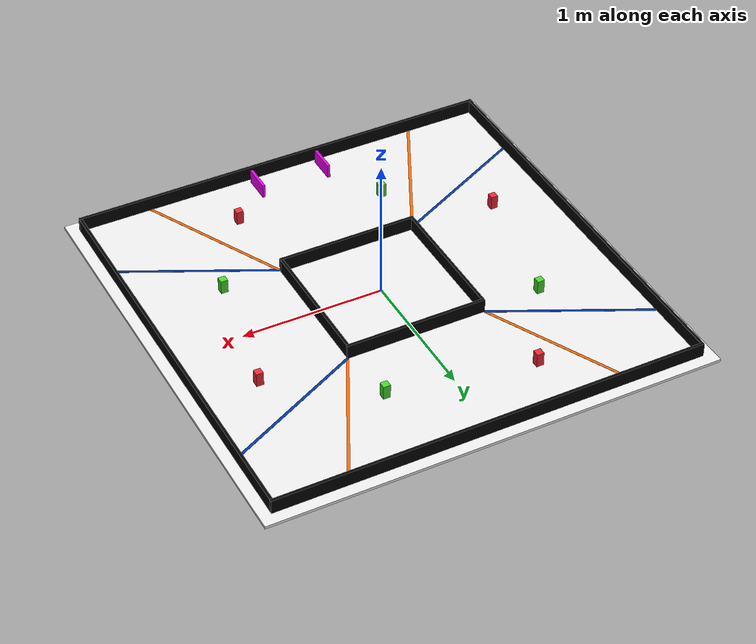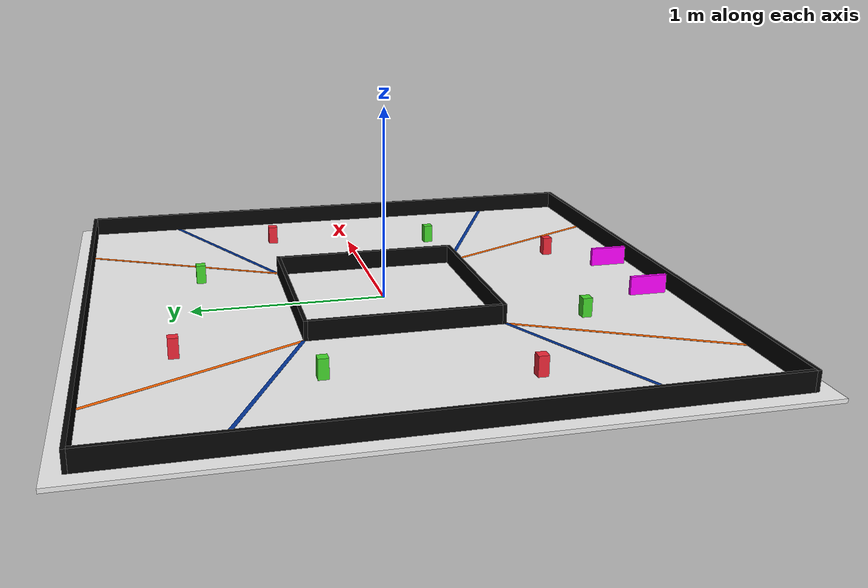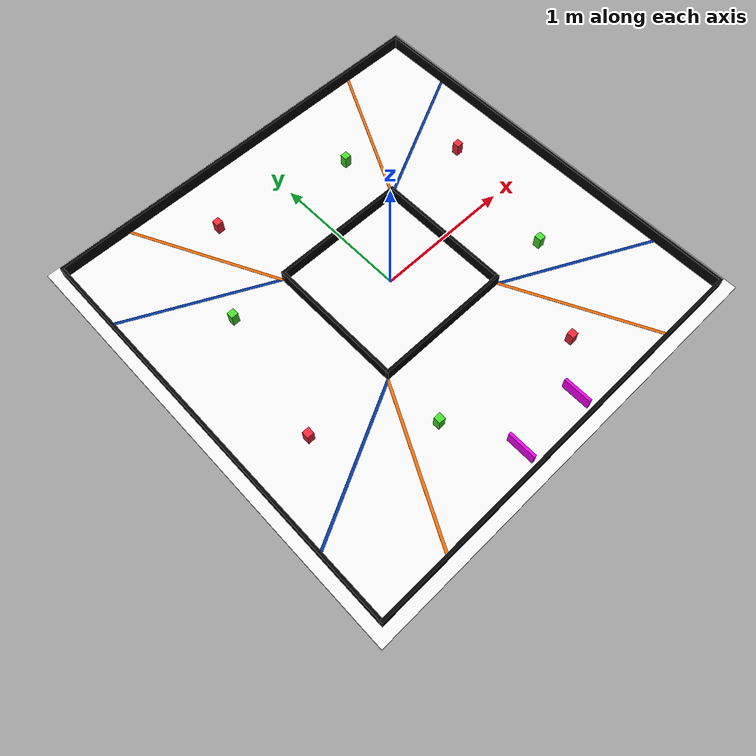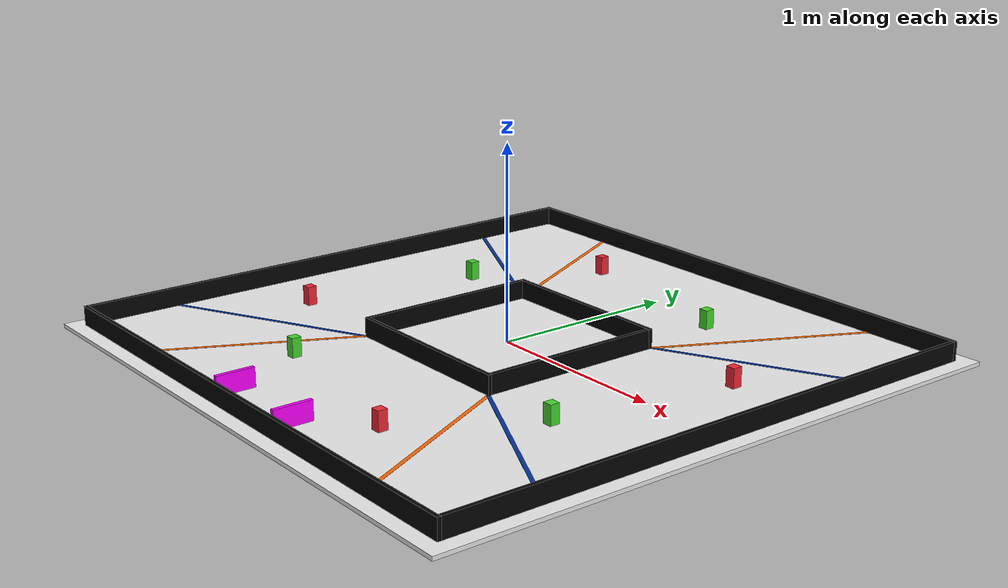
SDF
<sdf version="1.9">
 <world name="wro_future_engineers">
  <model name="wro_field_mat">
   <static>true</static>
   <pose>0 0 -0.01 0 0 0</pose>
   <link name="field_mat_link">
    <collision name="field_mat_collision">
     <geometry><box><size>3.2 3.2 0.02</size></box></geometry>
     <surface>
      <friction>
       <ode><mu>0.80</mu><mu2>0.80</mu2><fdir1>1 0 0</fdir1></ode>
       <torsional>
        <coefficient>0.20</coefficient>
        <use_patch_radius>true</use_patch_radius>
        <patch_radius>0.01</patch_radius>
        <surface_radius>0.01</surface_radius>
       </torsional>
      </friction>
      <contact>
       <collide_bitmask>65535</collide_bitmask>
       <ode><kp>1000000</kp><kd>100</kd><max_vel>0.01</max_vel><min_depth>0.001</min_depth></ode>
      </contact>
     </surface>
    </collision>
    <visual name="field_mat_visual">
     <geometry><box><size>3.2 3.2 0.02</size></box></geometry>
     <material>
      <ambient>0.92 0.92 0.92 1</ambient>
      <diffuse>0.92 0.92 0.92 1</diffuse>
      <specular>0.01 0.01 0.01 1</specular>
      <pbr><metal><roughness>1.0</roughness><metalness>0.0</metalness></metal></pbr>
     </material>
    </visual>
   </link>
  </model>
  <model name="outer_wall_north">
   <static>true</static>
   <pose>0 1.51 0.05 0 0 0</pose>
   <link name="link">
    <collision name="collision">
     <geometry><box><size>3.04 0.02 0.1</size></box></geometry>
     <surface>
      <friction><ode><mu>0.80</mu><mu2>0.80</mu2></ode></friction>
      <contact><ode><kp>1000000</kp><kd>100</kd><max_vel>0.01</max_vel><min_depth>0.001</min_depth></ode></contact>
     </surface>
    </collision>
    <visual name="visual">
     <geometry><box><size>3.04 0.02 0.1</size></box></geometry>
     <material>
      <ambient>0.015 0.015 0.015 1.0</ambient>
      <diffuse>0.015 0.015 0.015 1.0</diffuse>
      <specular>0.02 0.02 0.02 1</specular>
      <pbr><metal><roughness>0.95</roughness><metalness>0.0</metalness></metal></pbr>
     </material>
    </visual>
   </link>
  </model>
  <model name="outer_wall_south">
   <static>true</static>
   <pose>0 -1.51 0.05 0 0 0</pose>
   <link name="link">
    <collision name="collision">
     <geometry><box><size>3.04 0.02 0.1</size></box></geometry>
     <surface>
      <friction><ode><mu>0.80</mu><mu2>0.80</mu2></ode></friction>
      <contact><ode><kp>1000000</kp><kd>100</kd><max_vel>0.01</max_vel><min_depth>0.001</min_depth></ode></contact>
     </surface>
    </collision>
    <visual name="visual">
     <geometry><box><size>3.04 0.02 0.1</size></box></geometry>
     <material>
      <ambient>0.015 0.015 0.015 1.0</ambient>
      <diffuse>0.015 0.015 0.015 1.0</diffuse>
      <specular>0.02 0.02 0.02 1</specular>
      <pbr><metal><roughness>0.95</roughness><metalness>0.0</metalness></metal></pbr>
     </material>
    </visual>
   </link>
  </model>
  <model name="outer_wall_east">
   <static>true</static>
   <pose>1.51 0 0.05 0 0 0</pose>
   <link name="link">
    <collision name="collision">
     <geometry><box><size>0.02 3.0 0.1</size></box></geometry>
     <surface>
      <friction><ode><mu>0.80</mu><mu2>0.80</mu2></ode></friction>
      <contact><ode><kp>1000000</kp><kd>100</kd><max_vel>0.01</max_vel><min_depth>0.001</min_depth></ode></contact>
     </surface>
    </collision>
    <visual name="visual">
     <geometry><box><size>0.02 3.0 0.1</size></box></geometry>
     <material>
      <ambient>0.015 0.015 0.015 1.0</ambient>
      <diffuse>0.015 0.015 0.015 1.0</diffuse>
      <specular>0.02 0.02 0.02 1</specular>
      <pbr><metal><roughness>0.95</roughness><metalness>0.0</metalness></metal></pbr>
     </material>
    </visual>
   </link>
  </model>
  <model name="outer_wall_west">
   <static>true</static>
   <pose>-1.51 0 0.05 0 0 0</pose>
   <link name="link">
    <collision name="collision">
     <geometry><box><size>0.02 3.0 0.1</size></box></geometry>
     <surface>
      <friction><ode><mu>0.80</mu><mu2>0.80</mu2></ode></friction>
      <contact><ode><kp>1000000</kp><kd>100</kd><max_vel>0.01</max_vel><min_depth>0.001</min_depth></ode></contact>
     </surface>
    </collision>
    <visual name="visual">
     <geometry><box><size>0.02 3.0 0.1</size></box></geometry>
     <material>
      <ambient>0.015 0.015 0.015 1.0</ambient>
      <diffuse>0.015 0.015 0.015 1.0</diffuse>
      <specular>0.02 0.02 0.02 1</specular>
      <pbr><metal><roughness>0.95</roughness><metalness>0.0</metalness></metal></pbr>
     </material>
    </visual>
   </link>
  </model>
  <model name="inner_wall_north">
   <static>true</static>
   <pose>0 0.49 0.05 0 0 0</pose>
   <link name="link">
    <collision name="collision">
     <geometry><box><size>1.0 0.02 0.1</size></box></geometry>
     <surface>
      <friction><ode><mu>0.80</mu><mu2>0.80</mu2></ode></friction>
      <contact><ode><kp>1000000</kp><kd>100</kd><max_vel>0.01</max_vel><min_depth>0.001</min_depth></ode></contact>
     </surface>
    </collision>
    <visual name="visual">
     <geometry><box><size>1.0 0.02 0.1</size></box></geometry>
     <material>
      <ambient>0.01 0.01 0.01 1.0</ambient>
      <diffuse>0.01 0.01 0.01 1.0</diffuse>
      <specular>0.02 0.02 0.02 1</specular>
      <pbr><metal><roughness>0.95</roughness><metalness>0.0</metalness></metal></pbr>
     </material>
    </visual>
   </link>
  </model>
  <model name="inner_wall_south">
   <static>true</static>
   <pose>0 -0.49 0.05 0 0 0</pose>
   <link name="link">
    <collision name="collision">
     <geometry><box><size>1.0 0.02 0.1</size></box></geometry>
     <surface>
      <friction><ode><mu>0.80</mu><mu2>0.80</mu2></ode></friction>
      <contact><ode><kp>1000000</kp><kd>100</kd><max_vel>0.01</max_vel><min_depth>0.001</min_depth></ode></contact>
     </surface>
    </collision>
    <visual name="visual">
     <geometry><box><size>1.0 0.02 0.1</size></box></geometry>
     <material>
      <ambient>0.01 0.01 0.01 1.0</ambient>
      <diffuse>0.01 0.01 0.01 1.0</diffuse>
      <specular>0.02 0.02 0.02 1</specular>
      <pbr><metal><roughness>0.95</roughness><metalness>0.0</metalness></metal></pbr>
     </material>
    </visual>
   </link>
  </model>
  <model name="inner_wall_east">
   <static>true</static>
   <pose>0.49 0 0.05 0 0 0</pose>
   <link name="link">
    <collision name="collision">
     <geometry><box><size>0.02 0.96 0.1</size></box></geometry>
     <surface>
      <friction><ode><mu>0.80</mu><mu2>0.80</mu2></ode></friction>
      <contact><ode><kp>1000000</kp><kd>100</kd><max_vel>0.01</max_vel><min_depth>0.001</min_depth></ode></contact>
     </surface>
    </collision>
    <visual name="visual">
     <geometry><box><size>0.02 0.96 0.1</size></box></geometry>
     <material>
      <ambient>0.01 0.01 0.01 1.0</ambient>
      <diffuse>0.01 0.01 0.01 1.0</diffuse>
      <specular>0.02 0.02 0.02 1</specular>
      <pbr><metal><roughness>0.95</roughness><metalness>0.0</metalness></metal></pbr>
     </material>
    </visual>
   </link>
  </model>
  <model name="inner_wall_west">
   <static>true</static>
   <pose>-0.49 0 0.05 0 0 0</pose>
   <link name="link">
    <collision name="collision">
     <geometry><box><size>0.02 0.96 0.1</size></box></geometry>
     <surface>
      <friction><ode><mu>0.80</mu><mu2>0.80</mu2></ode></friction>
      <contact><ode><kp>1000000</kp><kd>100</kd><max_vel>0.01</max_vel><min_depth>0.001</min_depth></ode></contact>
     </surface>
    </collision>
    <visual name="visual">
     <geometry><box><size>0.02 0.96 0.1</size></box></geometry>
     <material>
      <ambient>0.01 0.01 0.01 1.0</ambient>
      <diffuse>0.01 0.01 0.01 1.0</diffuse>
      <specular>0.02 0.02 0.02 1</specular>
      <pbr><metal><roughness>0.95</roughness><metalness>0.0</metalness></metal></pbr>
     </material>
    </visual>
   </link>
  </model>
  <model name="orange_line_sw">
   <static>true</static>
   <pose>-0.75 -1.0 0.0015 0 0 -2.0344439357957027</pose>
   <link name="link">
    <visual name="visual">
     <geometry><box><size>1.118 0.02 0.001</size></box></geometry>
     <material>
      <ambient>1.0 0.4 0.0 1</ambient>
      <diffuse>1.0 0.4 0.0 1</diffuse>
      <specular>0 0 0 1</specular>
     </material>
    </visual>
   </link>
  </model>
  <model name="blue_line_sw">
   <static>true</static>
   <pose>-1.0 -0.75 0.0015 0 0 -2.677945044588987</pose>
   <link name="link">
    <visual name="visual">
     <geometry><box><size>1.118 0.02 0.001</size></box></geometry>
     <material>
      <ambient>0.0 0.2 0.6 1</ambient>
      <diffuse>0.0 0.2 0.6 1</diffuse>
      <specular>0 0 0 1</specular>
     </material>
    </visual>
   </link>
  </model>
  <model name="orange_line_se">
   <static>true</static>
   <pose>0.75 -1.0 0.0015 0 0 -1.1071487177940904</pose>
   <link name="link">
    <visual name="visual">
     <geometry><box><size>1.118 0.02 0.001</size></box></geometry>
     <material>
      <ambient>1.0 0.4 0.0 1</ambient>
      <diffuse>1.0 0.4 0.0 1</diffuse>
      <specular>0 0 0 1</specular>
     </material>
    </visual>
   </link>
  </model>
  <model name="blue_line_se">
   <static>true</static>
   <pose>1.0 -0.75 0.0015 0 0 -0.4636476090008061</pose>
   <link name="link">
    <visual name="visual">
     <geometry><box><size>1.118 0.02 0.001</size></box></geometry>
     <material>
      <ambient>0.0 0.2 0.6 1</ambient>
      <diffuse>0.0 0.2 0.6 1</diffuse>
      <specular>0 0 0 1</specular>
     </material>
    </visual>
   </link>
  </model>
  <model name="orange_line_ne">
   <static>true</static>
   <pose>0.75 1.0 0.0015 0 0 1.1071487177940904</pose>
   <link name="link">
    <visual name="visual">
     <geometry><box><size>1.118 0.02 0.001</size></box></geometry>
     <material>
      <ambient>1.0 0.4 0.0 1</ambient>
      <diffuse>1.0 0.4 0.0 1</diffuse>
      <specular>0 0 0 1</specular>
     </material>
    </visual>
   </link>
  </model>
  <model name="blue_line_ne">
   <static>true</static>
   <pose>1.0 0.75 0.0015 0 0 0.4636476090008061</pose>
   <link name="link">
    <visual name="visual">
     <geometry><box><size>1.118 0.02 0.001</size></box></geometry>
     <material>
      <ambient>0.0 0.2 0.6 1</ambient>
      <diffuse>0.0 0.2 0.6 1</diffuse>
      <specular>0 0 0 1</specular>
     </material>
    </visual>
   </link>
  </model>
  <model name="orange_line_nw">
   <static>true</static>
   <pose>-0.75 1.0 0.0015 0 0 2.0344439357957027</pose>
   <link name="link">
    <visual name="visual">
     <geometry><box><size>1.118 0.02 0.001</size></box></geometry>
     <material>
      <ambient>1.0 0.4 0.0 1</ambient>
      <diffuse>1.0 0.4 0.0 1</diffuse>
      <specular>0 0 0 1</specular>
     </material>
    </visual>
   </link>
  </model>
  <model name="blue_line_nw">
   <static>true</static>
   <pose>-1.0 0.75 0.0015 0 0 2.677945044588987</pose>
   <link name="link">
    <visual name="visual">
     <geometry><box><size>1.118 0.02 0.001</size></box></geometry>
     <material>
      <ambient>0.0 0.2 0.6 1</ambient>
      <diffuse>0.0 0.2 0.6 1</diffuse>
      <specular>0 0 0 1</specular>
     </material>
    </visual>
   </link>
  </model>
  <model name="red_sign_north_1">
   <static>false</static>
   <pose>-0.55 1.1 0.05 0 0 0</pose>
   <link name="link">
    <inertial>
     <mass>0.10</mass>
     <inertia>
      <ixx>0.00010417</ixx>
      <iyy>0.00010417</iyy>
      <izz>0.00004167</izz>
      <ixy>0</ixy>
      <ixz>0</ixz>
      <iyz>0</iyz>
     </inertia>
    </inertial>
    <collision name="collision">
     <geometry><box><size>0.05 0.05 0.1</size></box></geometry>
     <surface>
      <friction><ode><mu>0.65</mu><mu2>0.65</mu2></ode></friction>
      <contact><ode><kp>500000</kp><kd>50</kd><max_vel>0.02</max_vel><min_depth>0.001</min_depth></ode></contact>
     </surface>
    </collision>
    <visual name="visual">
     <geometry><box><size>0.05 0.05 0.1</size></box></geometry>
     <material>
      <ambient>0.933 0.153 0.216 1</ambient>
      <diffuse>0.933 0.153 0.216 1</diffuse>
      <specular>0.02 0.02 0.02 1</specular>
      <pbr><metal><roughness>0.90</roughness><metalness>0.0</metalness></metal></pbr>
     </material>
    </visual>
   </link>
  </model>
  <model name="green_sign_north_1">
   <static>false</static>
   <pose>0.45 0.92 0.05 0 0 0</pose>
   <link name="link">
    <inertial>
     <mass>0.10</mass>
     <inertia>
      <ixx>0.00010417</ixx>
      <iyy>0.00010417</iyy>
      <izz>0.00004167</izz>
      <ixy>0</ixy>
      <ixz>0</ixz>
      <iyz>0</iyz>
     </inertia>
    </inertial>
    <collision name="collision">
     <geometry><box><size>0.05 0.05 0.1</size></box></geometry>
     <surface>
      <friction><ode><mu>0.65</mu><mu2>0.65</mu2></ode></friction>
      <contact><ode><kp>500000</kp><kd>50</kd><max_vel>0.02</max_vel><min_depth>0.001</min_depth></ode></contact>
     </surface>
    </collision>
    <visual name="visual">
     <geometry><box><size>0.05 0.05 0.1</size></box></geometry>
     <material>
      <ambient>0.267 0.839 0.173 1</ambient>
      <diffuse>0.267 0.839 0.173 1</diffuse>
      <specular>0.02 0.02 0.02 1</specular>
      <pbr><metal><roughness>0.90</roughness><metalness>0.0</metalness></metal></pbr>
     </material>
    </visual>
   </link>
  </model>
  <model name="red_sign_east_1">
   <static>false</static>
   <pose>1.1 0.45 0.05 0 0 0</pose>
   <link name="link">
    <inertial>
     <mass>0.10</mass>
     <inertia>
      <ixx>0.00010417</ixx>
      <iyy>0.00010417</iyy>
      <izz>0.00004167</izz>
      <ixy>0</ixy>
      <ixz>0</ixz>
      <iyz>0</iyz>
     </inertia>
    </inertial>
    <collision name="collision">
     <geometry><box><size>0.05 0.05 0.1</size></box></geometry>
     <surface>
      <friction><ode><mu>0.65</mu><mu2>0.65</mu2></ode></friction>
      <contact><ode><kp>500000</kp><kd>50</kd><max_vel>0.02</max_vel><min_depth>0.001</min_depth></ode></contact>
     </surface>
    </collision>
    <visual name="visual">
     <geometry><box><size>0.05 0.05 0.1</size></box></geometry>
     <material>
      <ambient>0.933 0.153 0.216 1</ambient>
      <diffuse>0.933 0.153 0.216 1</diffuse>
      <specular>0.02 0.02 0.02 1</specular>
      <pbr><metal><roughness>0.90</roughness><metalness>0.0</metalness></metal></pbr>
     </material>
    </visual>
   </link>
  </model>
  <model name="green_sign_east_1">
   <static>false</static>
   <pose>0.92 -0.48 0.05 0 0 0</pose>
   <link name="link">
    <inertial>
     <mass>0.10</mass>
     <inertia>
      <ixx>0.00010417</ixx>
      <iyy>0.00010417</iyy>
      <izz>0.00004167</izz>
      <ixy>0</ixy>
      <ixz>0</ixz>
      <iyz>0</iyz>
     </inertia>
    </inertial>
    <collision name="collision">
     <geometry><box><size>0.05 0.05 0.1</size></box></geometry>
     <surface>
      <friction><ode><mu>0.65</mu><mu2>0.65</mu2></ode></friction>
      <contact><ode><kp>500000</kp><kd>50</kd><max_vel>0.02</max_vel><min_depth>0.001</min_depth></ode></contact>
     </surface>
    </collision>
    <visual name="visual">
     <geometry><box><size>0.05 0.05 0.1</size></box></geometry>
     <material>
      <ambient>0.267 0.839 0.173 1</ambient>
      <diffuse>0.267 0.839 0.173 1</diffuse>
      <specular>0.02 0.02 0.02 1</specular>
      <pbr><metal><roughness>0.90</roughness><metalness>0.0</metalness></metal></pbr>
     </material>
    </visual>
   </link>
  </model>
  <model name="red_sign_south_1">
   <static>false</static>
   <pose>0.52 -1.1 0.05 0 0 0</pose>
   <link name="link">
    <inertial>
     <mass>0.10</mass>
     <inertia>
      <ixx>0.00010417</ixx>
      <iyy>0.00010417</iyy>
      <izz>0.00004167</izz>
      <ixy>0</ixy>
      <ixz>0</ixz>
      <iyz>0</iyz>
     </inertia>
    </inertial>
    <collision name="collision">
     <geometry><box><size>0.05 0.05 0.1</size></box></geometry>
     <surface>
      <friction><ode><mu>0.65</mu><mu2>0.65</mu2></ode></friction>
      <contact><ode><kp>500000</kp><kd>50</kd><max_vel>0.02</max_vel><min_depth>0.001</min_depth></ode></contact>
     </surface>
    </collision>
    <visual name="visual">
     <geometry><box><size>0.05 0.05 0.1</size></box></geometry>
     <material>
      <ambient>0.933 0.153 0.216 1</ambient>
      <diffuse>0.933 0.153 0.216 1</diffuse>
      <specular>0.02 0.02 0.02 1</specular>
      <pbr><metal><roughness>0.90</roughness><metalness>0.0</metalness></metal></pbr>
     </material>
    </visual>
   </link>
  </model>
  <model name="green_sign_south_1">
   <static>false</static>
   <pose>-0.48 -0.92 0.05 0 0 0</pose>
   <link name="link">
    <inertial>
     <mass>0.10</mass>
     <inertia>
      <ixx>0.00010417</ixx>
      <iyy>0.00010417</iyy>
      <izz>0.00004167</izz>
      <ixy>0</ixy>
      <ixz>0</ixz>
      <iyz>0</iyz>
     </inertia>
    </inertial>
    <collision name="collision">
     <geometry><box><size>0.05 0.05 0.1</size></box></geometry>
     <surface>
      <friction><ode><mu>0.65</mu><mu2>0.65</mu2></ode></friction>
      <contact><ode><kp>500000</kp><kd>50</kd><max_vel>0.02</max_vel><min_depth>0.001</min_depth></ode></contact>
     </surface>
    </collision>
    <visual name="visual">
     <geometry><box><size>0.05 0.05 0.1</size></box></geometry>
     <material>
      <ambient>0.267 0.839 0.173 1</ambient>
      <diffuse>0.267 0.839 0.173 1</diffuse>
      <specular>0.02 0.02 0.02 1</specular>
      <pbr><metal><roughness>0.90</roughness><metalness>0.0</metalness></metal></pbr>
     </material>
    </visual>
   </link>
  </model>
  <model name="red_sign_west_1">
   <static>false</static>
   <pose>-1.1 -0.45 0.05 0 0 0</pose>
   <link name="link">
    <inertial>
     <mass>0.10</mass>
     <inertia>
      <ixx>0.00010417</ixx>
      <iyy>0.00010417</iyy>
      <izz>0.00004167</izz>
      <ixy>0</ixy>
      <ixz>0</ixz>
      <iyz>0</iyz>
     </inertia>
    </inertial>
    <collision name="collision">
     <geometry><box><size>0.05 0.05 0.1</size></box></geometry>
     <surface>
      <friction><ode><mu>0.65</mu><mu2>0.65</mu2></ode></friction>
      <contact><ode><kp>500000</kp><kd>50</kd><max_vel>0.02</max_vel><min_depth>0.001</min_depth></ode></contact>
     </surface>
    </collision>
    <visual name="visual">
     <geometry><box><size>0.05 0.05 0.1</size></box></geometry>
     <material>
      <ambient>0.933 0.153 0.216 1</ambient>
      <diffuse>0.933 0.153 0.216 1</diffuse>
      <specular>0.02 0.02 0.02 1</specular>
      <pbr><metal><roughness>0.90</roughness><metalness>0.0</metalness></metal></pbr>
     </material>
    </visual>
   </link>
  </model>
  <model name="green_sign_west_1">
   <static>false</static>
   <pose>-0.92 0.48 0.05 0 0 0</pose>
   <link name="link">
    <inertial>
     <mass>0.10</mass>
     <inertia>
      <ixx>0.00010417</ixx>
      <iyy>0.00010417</iyy>
      <izz>0.00004167</izz>
      <ixy>0</ixy>
      <ixz>0</ixz>
      <iyz>0</iyz>
     </inertia>
    </inertial>
    <collision name="collision">
     <geometry><box><size>0.05 0.05 0.1</size></box></geometry>
     <surface>
      <friction><ode><mu>0.65</mu><mu2>0.65</mu2></ode></friction>
      <contact><ode><kp>500000</kp><kd>50</kd><max_vel>0.02</max_vel><min_depth>0.001</min_depth></ode></contact>
     </surface>
    </collision>
    <visual name="visual">
     <geometry><box><size>0.05 0.05 0.1</size></box></geometry>
     <material>
      <ambient>0.267 0.839 0.173 1</ambient>
      <diffuse>0.267 0.839 0.173 1</diffuse>
      <specular>0.02 0.02 0.02 1</specular>
      <pbr><metal><roughness>0.90</roughness><metalness>0.0</metalness></metal></pbr>
     </material>
    </visual>
   </link>
  </model>
  <model name="parking_barrier_left">
   <static>true</static>
   <pose>-0.25 -1.37 0.05 0 0 1.5707963267948966</pose>
   <link name="link">
    <collision name="collision">
     <geometry><box><size>0.2 0.02 0.1</size></box></geometry>
     <surface><friction><ode><mu>0.80</mu><mu2>0.80</mu2></ode></friction></surface>
    </collision>
    <visual name="visual">
     <geometry><box><size>0.2 0.02 0.1</size></box></geometry>
     <material>
      <ambient>1 0 1 1</ambient>
      <diffuse>1 0 1 1</diffuse>
      <specular>0.02 0.02 0.02 1</specular>
      <pbr><metal><roughness>0.90</roughness><metalness>0.0</metalness></metal></pbr>
     </material>
    </visual>
   </link>
  </model>
  <model name="parking_barrier_right">
   <static>true</static>
   <pose>0.25 -1.37 0.05 0 0 1.5707963267948966</pose>
   <link name="link">
    <collision name="collision">
     <geometry><box><size>0.2 0.02 0.1</size></box></geometry>
     <surface><friction><ode><mu>0.80</mu><mu2>0.80</mu2></ode></friction></surface>
    </collision>
    <visual name="visual">
     <geometry><box><size>0.2 0.02 0.1</size></box></geometry>
     <material>
      <ambient>1 0 1 1</ambient>
      <diffuse>1 0 1 1</diffuse>
      <specular>0.02 0.02 0.02 1</specular>
      <pbr><metal><roughness>0.90</roughness><metalness>0.0</metalness></metal></pbr>
     </material>
    </visual>
   </link>
  </model>
 </world>
</sdf>
